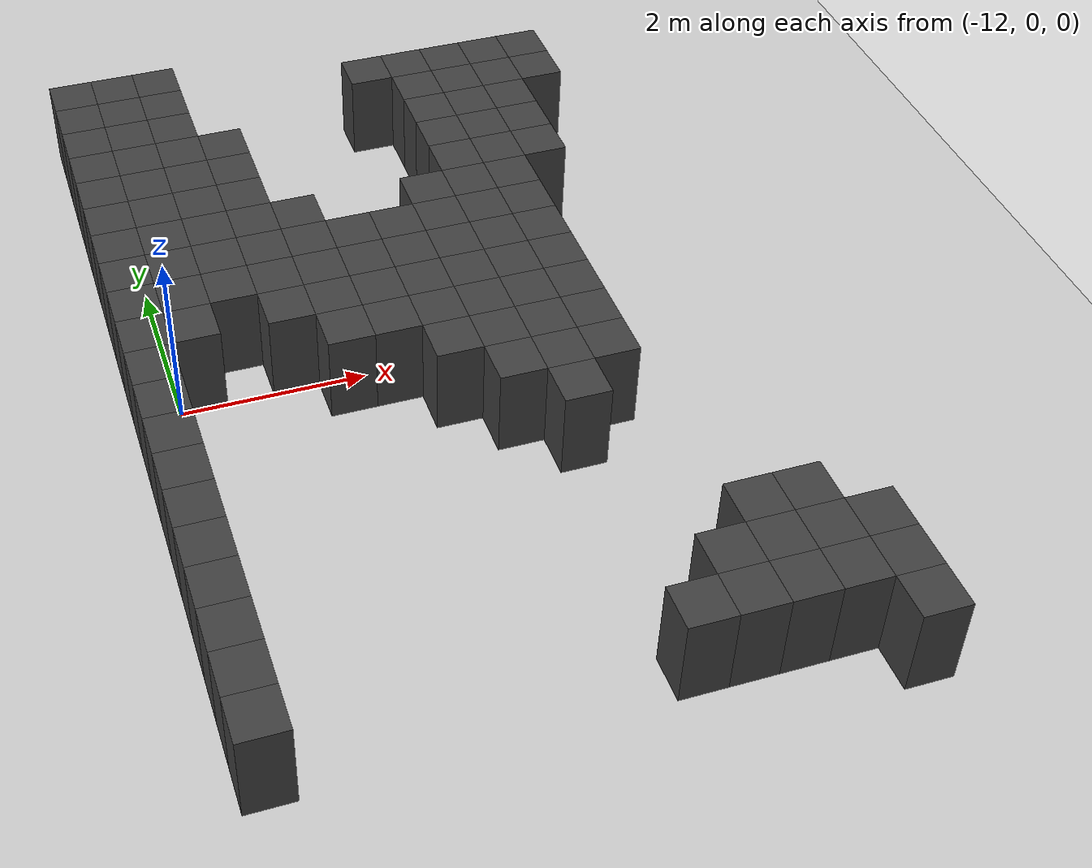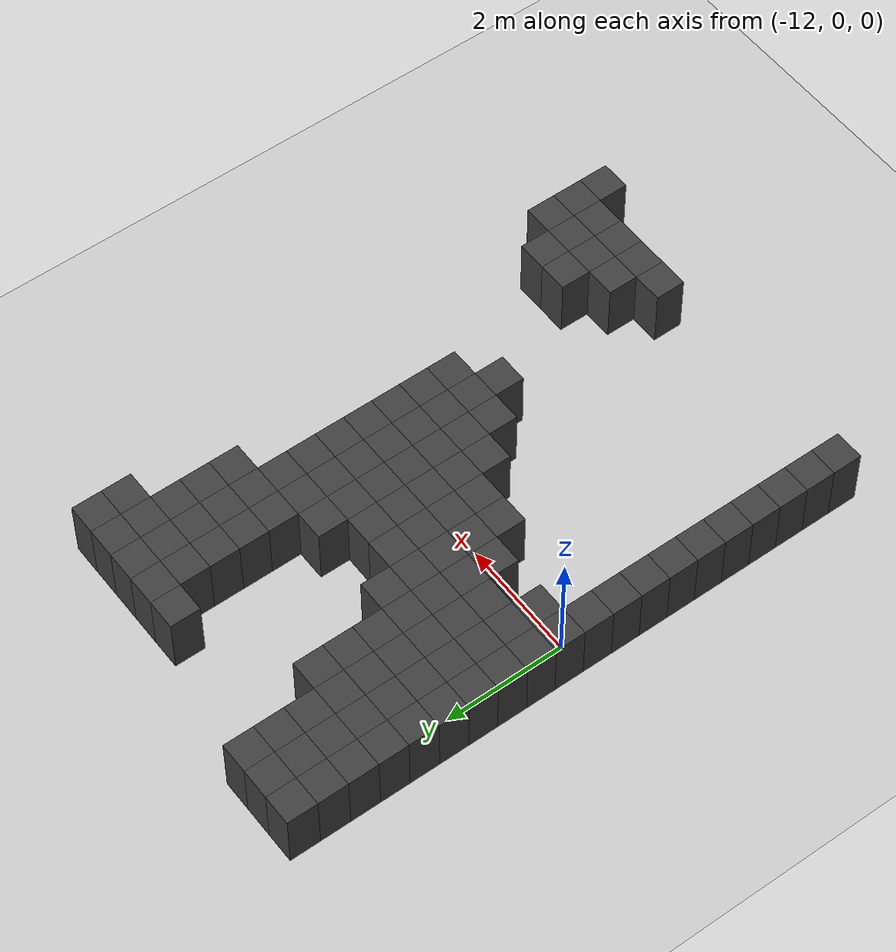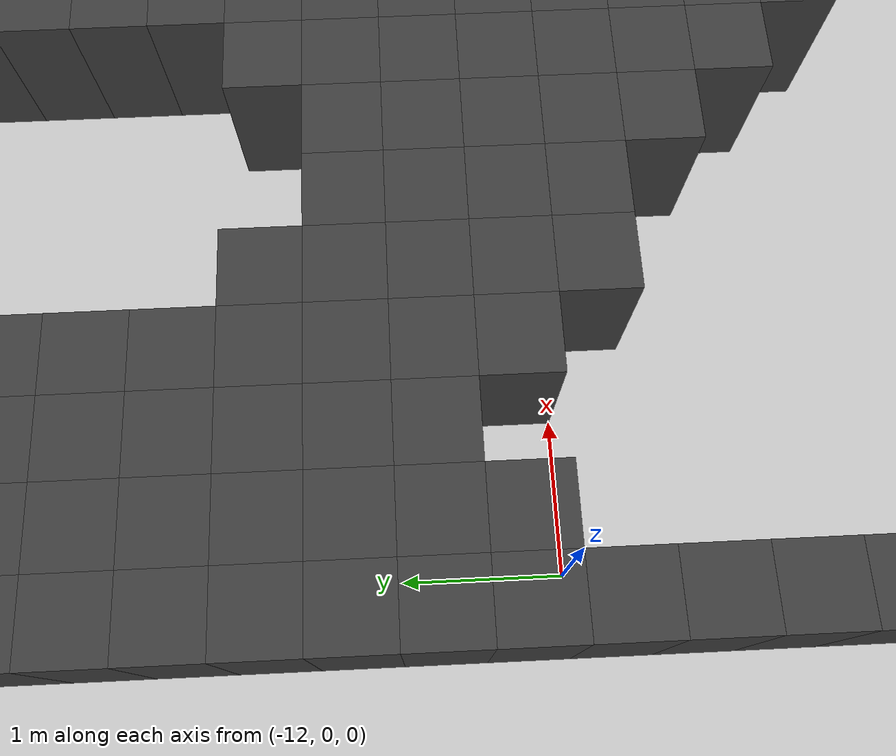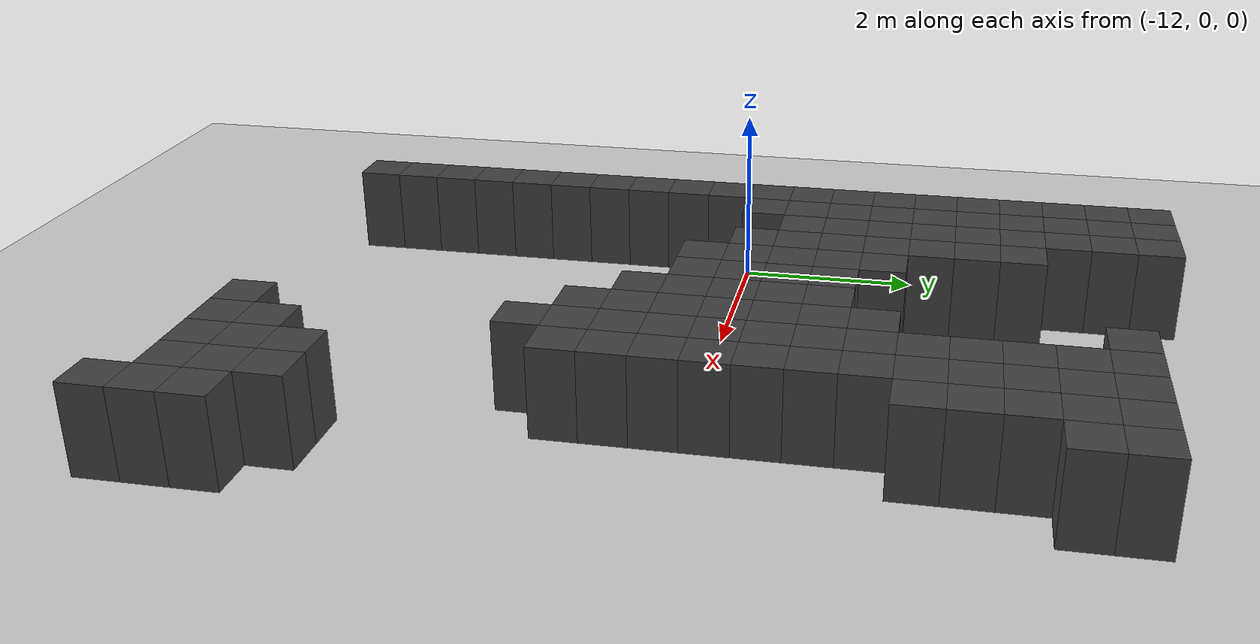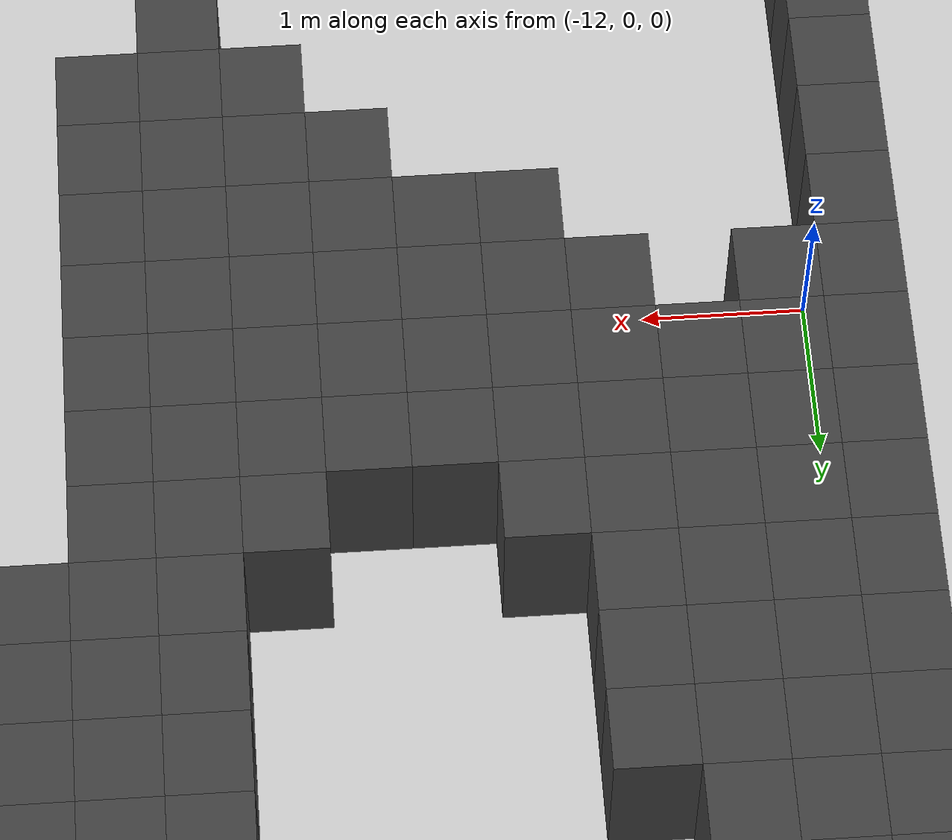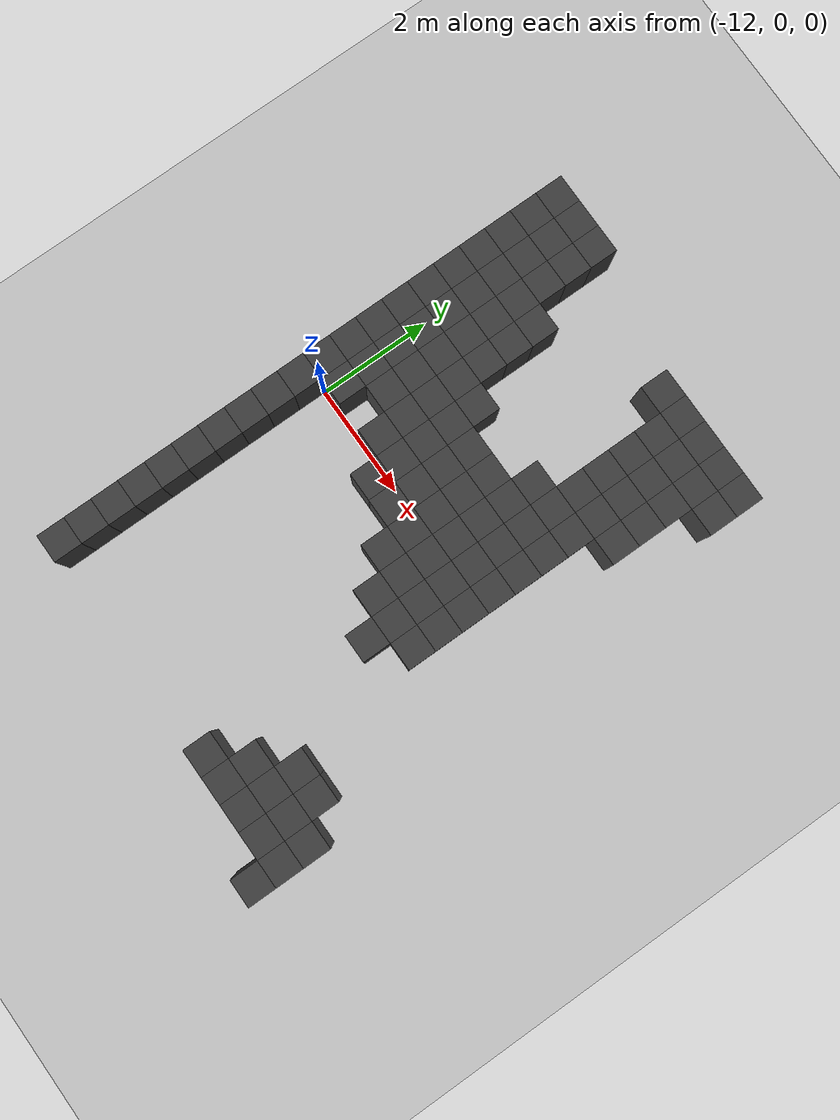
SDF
<sdf version="1.7">
 <world name="map_7219">
  <model name="ground_plane">
   <static>true</static>
   <link name="link">
    <collision name="collision">
     <geometry><plane><normal>0 0 1</normal><size>200 200</size></plane></geometry>
    </collision>
    <visual name="visual">
     <geometry><plane><normal>0 0 1</normal><size>200 200</size></plane></geometry>
     <material><ambient>0.8 0.8 0.8 1</ambient><diffuse>0.8 0.8 0.8 1</diffuse></material>
    </visual>
   </link>
  </model>
  <model name="maze_environment">
   <static>true</static>
   <link name="wall_198">
    <pose>-12.250 4.750 0.500 0 0 0</pose>
    <collision name="col"><geometry><box><size>0.5 0.5 1.0</size></box></geometry></collision>
    <visual name="vis">
     <geometry><box><size>0.5 0.5 1.0</size></box></geometry>
     <material><ambient>0.15 0.15 0.15 1</ambient><diffuse>0.25 0.25 0.25 1</diffuse></material>
    </visual>
   </link>
   <link name="wall_199">
    <pose>-11.750 4.750 0.500 0 0 0</pose>
    <collision name="col"><geometry><box><size>0.5 0.5 1.0</size></box></geometry></collision>
    <visual name="vis">
     <geometry><box><size>0.5 0.5 1.0</size></box></geometry>
     <material><ambient>0.15 0.15 0.15 1</ambient><diffuse>0.25 0.25 0.25 1</diffuse></material>
    </visual>
   </link>
   <link name="wall_200">
    <pose>-11.250 4.750 0.500 0 0 0</pose>
    <collision name="col"><geometry><box><size>0.5 0.5 1.0</size></box></geometry></collision>
    <visual name="vis">
     <geometry><box><size>0.5 0.5 1.0</size></box></geometry>
     <material><ambient>0.15 0.15 0.15 1</ambient><diffuse>0.25 0.25 0.25 1</diffuse></material>
    </visual>
   </link>
   <link name="wall_216">
    <pose>-12.250 4.250 0.500 0 0 0</pose>
    <collision name="col"><geometry><box><size>0.5 0.5 1.0</size></box></geometry></collision>
    <visual name="vis">
     <geometry><box><size>0.5 0.5 1.0</size></box></geometry>
     <material><ambient>0.15 0.15 0.15 1</ambient><diffuse>0.25 0.25 0.25 1</diffuse></material>
    </visual>
   </link>
   <link name="wall_217">
    <pose>-11.750 4.250 0.500 0 0 0</pose>
    <collision name="col"><geometry><box><size>0.5 0.5 1.0</size></box></geometry></collision>
    <visual name="vis">
     <geometry><box><size>0.5 0.5 1.0</size></box></geometry>
     <material><ambient>0.15 0.15 0.15 1</ambient><diffuse>0.25 0.25 0.25 1</diffuse></material>
    </visual>
   </link>
   <link name="wall_218">
    <pose>-11.250 4.250 0.500 0 0 0</pose>
    <collision name="col"><geometry><box><size>0.5 0.5 1.0</size></box></geometry></collision>
    <visual name="vis">
     <geometry><box><size>0.5 0.5 1.0</size></box></geometry>
     <material><ambient>0.15 0.15 0.15 1</ambient><diffuse>0.25 0.25 0.25 1</diffuse></material>
    </visual>
   </link>
   <link name="wall_219">
    <pose>-8.750 4.250 0.500 0 0 0</pose>
    <collision name="col"><geometry><box><size>0.5 0.5 1.0</size></box></geometry></collision>
    <visual name="vis">
     <geometry><box><size>0.5 0.5 1.0</size></box></geometry>
     <material><ambient>0.15 0.15 0.15 1</ambient><diffuse>0.25 0.25 0.25 1</diffuse></material>
    </visual>
   </link>
   <link name="wall_220">
    <pose>-8.250 4.250 0.500 0 0 0</pose>
    <collision name="col"><geometry><box><size>0.5 0.5 1.0</size></box></geometry></collision>
    <visual name="vis">
     <geometry><box><size>0.5 0.5 1.0</size></box></geometry>
     <material><ambient>0.15 0.15 0.15 1</ambient><diffuse>0.25 0.25 0.25 1</diffuse></material>
    </visual>
   </link>
   <link name="wall_221">
    <pose>-7.750 4.250 0.500 0 0 0</pose>
    <collision name="col"><geometry><box><size>0.5 0.5 1.0</size></box></geometry></collision>
    <visual name="vis">
     <geometry><box><size>0.5 0.5 1.0</size></box></geometry>
     <material><ambient>0.15 0.15 0.15 1</ambient><diffuse>0.25 0.25 0.25 1</diffuse></material>
    </visual>
   </link>
   <link name="wall_222">
    <pose>-7.250 4.250 0.500 0 0 0</pose>
    <collision name="col"><geometry><box><size>0.5 0.5 1.0</size></box></geometry></collision>
    <visual name="vis">
     <geometry><box><size>0.5 0.5 1.0</size></box></geometry>
     <material><ambient>0.15 0.15 0.15 1</ambient><diffuse>0.25 0.25 0.25 1</diffuse></material>
    </visual>
   </link>
   <link name="wall_223">
    <pose>-6.750 4.250 0.500 0 0 0</pose>
    <collision name="col"><geometry><box><size>0.5 0.5 1.0</size></box></geometry></collision>
    <visual name="vis">
     <geometry><box><size>0.5 0.5 1.0</size></box></geometry>
     <material><ambient>0.15 0.15 0.15 1</ambient><diffuse>0.25 0.25 0.25 1</diffuse></material>
    </visual>
   </link>
   <link name="wall_235">
    <pose>-12.250 3.750 0.500 0 0 0</pose>
    <collision name="col"><geometry><box><size>0.5 0.5 1.0</size></box></geometry></collision>
    <visual name="vis">
     <geometry><box><size>0.5 0.5 1.0</size></box></geometry>
     <material><ambient>0.15 0.15 0.15 1</ambient><diffuse>0.25 0.25 0.25 1</diffuse></material>
    </visual>
   </link>
   <link name="wall_236">
    <pose>-11.750 3.750 0.500 0 0 0</pose>
    <collision name="col"><geometry><box><size>0.5 0.5 1.0</size></box></geometry></collision>
    <visual name="vis">
     <geometry><box><size>0.5 0.5 1.0</size></box></geometry>
     <material><ambient>0.15 0.15 0.15 1</ambient><diffuse>0.25 0.25 0.25 1</diffuse></material>
    </visual>
   </link>
   <link name="wall_237">
    <pose>-11.250 3.750 0.500 0 0 0</pose>
    <collision name="col"><geometry><box><size>0.5 0.5 1.0</size></box></geometry></collision>
    <visual name="vis">
     <geometry><box><size>0.5 0.5 1.0</size></box></geometry>
     <material><ambient>0.15 0.15 0.15 1</ambient><diffuse>0.25 0.25 0.25 1</diffuse></material>
    </visual>
   </link>
   <link name="wall_238">
    <pose>-8.250 3.750 0.500 0 0 0</pose>
    <collision name="col"><geometry><box><size>0.5 0.5 1.0</size></box></geometry></collision>
    <visual name="vis">
     <geometry><box><size>0.5 0.5 1.0</size></box></geometry>
     <material><ambient>0.15 0.15 0.15 1</ambient><diffuse>0.25 0.25 0.25 1</diffuse></material>
    </visual>
   </link>
   <link name="wall_239">
    <pose>-7.750 3.750 0.500 0 0 0</pose>
    <collision name="col"><geometry><box><size>0.5 0.5 1.0</size></box></geometry></collision>
    <visual name="vis">
     <geometry><box><size>0.5 0.5 1.0</size></box></geometry>
     <material><ambient>0.15 0.15 0.15 1</ambient><diffuse>0.25 0.25 0.25 1</diffuse></material>
    </visual>
   </link>
   <link name="wall_240">
    <pose>-7.250 3.750 0.500 0 0 0</pose>
    <collision name="col"><geometry><box><size>0.5 0.5 1.0</size></box></geometry></collision>
    <visual name="vis">
     <geometry><box><size>0.5 0.5 1.0</size></box></geometry>
     <material><ambient>0.15 0.15 0.15 1</ambient><diffuse>0.25 0.25 0.25 1</diffuse></material>
    </visual>
   </link>
   <link name="wall_241">
    <pose>-6.750 3.750 0.500 0 0 0</pose>
    <collision name="col"><geometry><box><size>0.5 0.5 1.0</size></box></geometry></collision>
    <visual name="vis">
     <geometry><box><size>0.5 0.5 1.0</size></box></geometry>
     <material><ambient>0.15 0.15 0.15 1</ambient><diffuse>0.25 0.25 0.25 1</diffuse></material>
    </visual>
   </link>
   <link name="wall_253">
    <pose>-12.250 3.250 0.500 0 0 0</pose>
    <collision name="col"><geometry><box><size>0.5 0.5 1.0</size></box></geometry></collision>
    <visual name="vis">
     <geometry><box><size>0.5 0.5 1.0</size></box></geometry>
     <material><ambient>0.15 0.15 0.15 1</ambient><diffuse>0.25 0.25 0.25 1</diffuse></material>
    </visual>
   </link>
   <link name="wall_254">
    <pose>-11.750 3.250 0.500 0 0 0</pose>
    <collision name="col"><geometry><box><size>0.5 0.5 1.0</size></box></geometry></collision>
    <visual name="vis">
     <geometry><box><size>0.5 0.5 1.0</size></box></geometry>
     <material><ambient>0.15 0.15 0.15 1</ambient><diffuse>0.25 0.25 0.25 1</diffuse></material>
    </visual>
   </link>
   <link name="wall_255">
    <pose>-11.250 3.250 0.500 0 0 0</pose>
    <collision name="col"><geometry><box><size>0.5 0.5 1.0</size></box></geometry></collision>
    <visual name="vis">
     <geometry><box><size>0.5 0.5 1.0</size></box></geometry>
     <material><ambient>0.15 0.15 0.15 1</ambient><diffuse>0.25 0.25 0.25 1</diffuse></material>
    </visual>
   </link>
   <link name="wall_256">
    <pose>-10.750 3.250 0.500 0 0 0</pose>
    <collision name="col"><geometry><box><size>0.5 0.5 1.0</size></box></geometry></collision>
    <visual name="vis">
     <geometry><box><size>0.5 0.5 1.0</size></box></geometry>
     <material><ambient>0.15 0.15 0.15 1</ambient><diffuse>0.25 0.25 0.25 1</diffuse></material>
    </visual>
   </link>
   <link name="wall_257">
    <pose>-8.250 3.250 0.500 0 0 0</pose>
    <collision name="col"><geometry><box><size>0.5 0.5 1.0</size></box></geometry></collision>
    <visual name="vis">
     <geometry><box><size>0.5 0.5 1.0</size></box></geometry>
     <material><ambient>0.15 0.15 0.15 1</ambient><diffuse>0.25 0.25 0.25 1</diffuse></material>
    </visual>
   </link>
   <link name="wall_258">
    <pose>-7.750 3.250 0.500 0 0 0</pose>
    <collision name="col"><geometry><box><size>0.5 0.5 1.0</size></box></geometry></collision>
    <visual name="vis">
     <geometry><box><size>0.5 0.5 1.0</size></box></geometry>
     <material><ambient>0.15 0.15 0.15 1</ambient><diffuse>0.25 0.25 0.25 1</diffuse></material>
    </visual>
   </link>
   <link name="wall_259">
    <pose>-7.250 3.250 0.500 0 0 0</pose>
    <collision name="col"><geometry><box><size>0.5 0.5 1.0</size></box></geometry></collision>
    <visual name="vis">
     <geometry><box><size>0.5 0.5 1.0</size></box></geometry>
     <material><ambient>0.15 0.15 0.15 1</ambient><diffuse>0.25 0.25 0.25 1</diffuse></material>
    </visual>
   </link>
   <link name="wall_269">
    <pose>-12.250 2.750 0.500 0 0 0</pose>
    <collision name="col"><geometry><box><size>0.5 0.5 1.0</size></box></geometry></collision>
    <visual name="vis">
     <geometry><box><size>0.5 0.5 1.0</size></box></geometry>
     <material><ambient>0.15 0.15 0.15 1</ambient><diffuse>0.25 0.25 0.25 1</diffuse></material>
    </visual>
   </link>
   <link name="wall_270">
    <pose>-11.750 2.750 0.500 0 0 0</pose>
    <collision name="col"><geometry><box><size>0.5 0.5 1.0</size></box></geometry></collision>
    <visual name="vis">
     <geometry><box><size>0.5 0.5 1.0</size></box></geometry>
     <material><ambient>0.15 0.15 0.15 1</ambient><diffuse>0.25 0.25 0.25 1</diffuse></material>
    </visual>
   </link>
   <link name="wall_271">
    <pose>-11.250 2.750 0.500 0 0 0</pose>
    <collision name="col"><geometry><box><size>0.5 0.5 1.0</size></box></geometry></collision>
    <visual name="vis">
     <geometry><box><size>0.5 0.5 1.0</size></box></geometry>
     <material><ambient>0.15 0.15 0.15 1</ambient><diffuse>0.25 0.25 0.25 1</diffuse></material>
    </visual>
   </link>
   <link name="wall_272">
    <pose>-10.750 2.750 0.500 0 0 0</pose>
    <collision name="col"><geometry><box><size>0.5 0.5 1.0</size></box></geometry></collision>
    <visual name="vis">
     <geometry><box><size>0.5 0.5 1.0</size></box></geometry>
     <material><ambient>0.15 0.15 0.15 1</ambient><diffuse>0.25 0.25 0.25 1</diffuse></material>
    </visual>
   </link>
   <link name="wall_273">
    <pose>-8.250 2.750 0.500 0 0 0</pose>
    <collision name="col"><geometry><box><size>0.5 0.5 1.0</size></box></geometry></collision>
    <visual name="vis">
     <geometry><box><size>0.5 0.5 1.0</size></box></geometry>
     <material><ambient>0.15 0.15 0.15 1</ambient><diffuse>0.25 0.25 0.25 1</diffuse></material>
    </visual>
   </link>
   <link name="wall_274">
    <pose>-7.750 2.750 0.500 0 0 0</pose>
    <collision name="col"><geometry><box><size>0.5 0.5 1.0</size></box></geometry></collision>
    <visual name="vis">
     <geometry><box><size>0.5 0.5 1.0</size></box></geometry>
     <material><ambient>0.15 0.15 0.15 1</ambient><diffuse>0.25 0.25 0.25 1</diffuse></material>
    </visual>
   </link>
   <link name="wall_275">
    <pose>-7.250 2.750 0.500 0 0 0</pose>
    <collision name="col"><geometry><box><size>0.5 0.5 1.0</size></box></geometry></collision>
    <visual name="vis">
     <geometry><box><size>0.5 0.5 1.0</size></box></geometry>
     <material><ambient>0.15 0.15 0.15 1</ambient><diffuse>0.25 0.25 0.25 1</diffuse></material>
    </visual>
   </link>
   <link name="wall_284">
    <pose>-12.250 2.250 0.500 0 0 0</pose>
    <collision name="col"><geometry><box><size>0.5 0.5 1.0</size></box></geometry></collision>
    <visual name="vis">
     <geometry><box><size>0.5 0.5 1.0</size></box></geometry>
     <material><ambient>0.15 0.15 0.15 1</ambient><diffuse>0.25 0.25 0.25 1</diffuse></material>
    </visual>
   </link>
   <link name="wall_285">
    <pose>-11.750 2.250 0.500 0 0 0</pose>
    <collision name="col"><geometry><box><size>0.5 0.5 1.0</size></box></geometry></collision>
    <visual name="vis">
     <geometry><box><size>0.5 0.5 1.0</size></box></geometry>
     <material><ambient>0.15 0.15 0.15 1</ambient><diffuse>0.25 0.25 0.25 1</diffuse></material>
    </visual>
   </link>
   <link name="wall_286">
    <pose>-11.250 2.250 0.500 0 0 0</pose>
    <collision name="col"><geometry><box><size>0.5 0.5 1.0</size></box></geometry></collision>
    <visual name="vis">
     <geometry><box><size>0.5 0.5 1.0</size></box></geometry>
     <material><ambient>0.15 0.15 0.15 1</ambient><diffuse>0.25 0.25 0.25 1</diffuse></material>
    </visual>
   </link>
   <link name="wall_287">
    <pose>-10.750 2.250 0.500 0 0 0</pose>
    <collision name="col"><geometry><box><size>0.5 0.5 1.0</size></box></geometry></collision>
    <visual name="vis">
     <geometry><box><size>0.5 0.5 1.0</size></box></geometry>
     <material><ambient>0.15 0.15 0.15 1</ambient><diffuse>0.25 0.25 0.25 1</diffuse></material>
    </visual>
   </link>
   <link name="wall_288">
    <pose>-8.250 2.250 0.500 0 0 0</pose>
    <collision name="col"><geometry><box><size>0.5 0.5 1.0</size></box></geometry></collision>
    <visual name="vis">
     <geometry><box><size>0.5 0.5 1.0</size></box></geometry>
     <material><ambient>0.15 0.15 0.15 1</ambient><diffuse>0.25 0.25 0.25 1</diffuse></material>
    </visual>
   </link>
   <link name="wall_289">
    <pose>-7.750 2.250 0.500 0 0 0</pose>
    <collision name="col"><geometry><box><size>0.5 0.5 1.0</size></box></geometry></collision>
    <visual name="vis">
     <geometry><box><size>0.5 0.5 1.0</size></box></geometry>
     <material><ambient>0.15 0.15 0.15 1</ambient><diffuse>0.25 0.25 0.25 1</diffuse></material>
    </visual>
   </link>
   <link name="wall_290">
    <pose>-7.250 2.250 0.500 0 0 0</pose>
    <collision name="col"><geometry><box><size>0.5 0.5 1.0</size></box></geometry></collision>
    <visual name="vis">
     <geometry><box><size>0.5 0.5 1.0</size></box></geometry>
     <material><ambient>0.15 0.15 0.15 1</ambient><diffuse>0.25 0.25 0.25 1</diffuse></material>
    </visual>
   </link>
   <link name="wall_300">
    <pose>-12.250 1.750 0.500 0 0 0</pose>
    <collision name="col"><geometry><box><size>0.5 0.5 1.0</size></box></geometry></collision>
    <visual name="vis">
     <geometry><box><size>0.5 0.5 1.0</size></box></geometry>
     <material><ambient>0.15 0.15 0.15 1</ambient><diffuse>0.25 0.25 0.25 1</diffuse></material>
    </visual>
   </link>
   <link name="wall_301">
    <pose>-11.750 1.750 0.500 0 0 0</pose>
    <collision name="col"><geometry><box><size>0.5 0.5 1.0</size></box></geometry></collision>
    <visual name="vis">
     <geometry><box><size>0.5 0.5 1.0</size></box></geometry>
     <material><ambient>0.15 0.15 0.15 1</ambient><diffuse>0.25 0.25 0.25 1</diffuse></material>
    </visual>
   </link>
   <link name="wall_302">
    <pose>-11.250 1.750 0.500 0 0 0</pose>
    <collision name="col"><geometry><box><size>0.5 0.5 1.0</size></box></geometry></collision>
    <visual name="vis">
     <geometry><box><size>0.5 0.5 1.0</size></box></geometry>
     <material><ambient>0.15 0.15 0.15 1</ambient><diffuse>0.25 0.25 0.25 1</diffuse></material>
    </visual>
   </link>
   <link name="wall_303">
    <pose>-10.750 1.750 0.500 0 0 0</pose>
    <collision name="col"><geometry><box><size>0.5 0.5 1.0</size></box></geometry></collision>
    <visual name="vis">
     <geometry><box><size>0.5 0.5 1.0</size></box></geometry>
     <material><ambient>0.15 0.15 0.15 1</ambient><diffuse>0.25 0.25 0.25 1</diffuse></material>
    </visual>
   </link>
   <link name="wall_304">
    <pose>-10.250 1.750 0.500 0 0 0</pose>
    <collision name="col"><geometry><box><size>0.5 0.5 1.0</size></box></geometry></collision>
    <visual name="vis">
     <geometry><box><size>0.5 0.5 1.0</size></box></geometry>
     <material><ambient>0.15 0.15 0.15 1</ambient><diffuse>0.25 0.25 0.25 1</diffuse></material>
    </visual>
   </link>
   <link name="wall_305">
    <pose>-8.750 1.750 0.500 0 0 0</pose>
    <collision name="col"><geometry><box><size>0.5 0.5 1.0</size></box></geometry></collision>
    <visual name="vis">
     <geometry><box><size>0.5 0.5 1.0</size></box></geometry>
     <material><ambient>0.15 0.15 0.15 1</ambient><diffuse>0.25 0.25 0.25 1</diffuse></material>
    </visual>
   </link>
   <link name="wall_306">
    <pose>-8.250 1.750 0.500 0 0 0</pose>
    <collision name="col"><geometry><box><size>0.5 0.5 1.0</size></box></geometry></collision>
    <visual name="vis">
     <geometry><box><size>0.5 0.5 1.0</size></box></geometry>
     <material><ambient>0.15 0.15 0.15 1</ambient><diffuse>0.25 0.25 0.25 1</diffuse></material>
    </visual>
   </link>
   <link name="wall_307">
    <pose>-7.750 1.750 0.500 0 0 0</pose>
    <collision name="col"><geometry><box><size>0.5 0.5 1.0</size></box></geometry></collision>
    <visual name="vis">
     <geometry><box><size>0.5 0.5 1.0</size></box></geometry>
     <material><ambient>0.15 0.15 0.15 1</ambient><diffuse>0.25 0.25 0.25 1</diffuse></material>
    </visual>
   </link>
   <link name="wall_318">
    <pose>-12.250 1.250 0.500 0 0 0</pose>
    <collision name="col"><geometry><box><size>0.5 0.5 1.0</size></box></geometry></collision>
    <visual name="vis">
     <geometry><box><size>0.5 0.5 1.0</size></box></geometry>
     <material><ambient>0.15 0.15 0.15 1</ambient><diffuse>0.25 0.25 0.25 1</diffuse></material>
    </visual>
   </link>
   <link name="wall_319">
    <pose>-11.750 1.250 0.500 0 0 0</pose>
    <collision name="col"><geometry><box><size>0.5 0.5 1.0</size></box></geometry></collision>
    <visual name="vis">
     <geometry><box><size>0.5 0.5 1.0</size></box></geometry>
     <material><ambient>0.15 0.15 0.15 1</ambient><diffuse>0.25 0.25 0.25 1</diffuse></material>
    </visual>
   </link>
   <link name="wall_320">
    <pose>-11.250 1.250 0.500 0 0 0</pose>
    <collision name="col"><geometry><box><size>0.5 0.5 1.0</size></box></geometry></collision>
    <visual name="vis">
     <geometry><box><size>0.5 0.5 1.0</size></box></geometry>
     <material><ambient>0.15 0.15 0.15 1</ambient><diffuse>0.25 0.25 0.25 1</diffuse></material>
    </visual>
   </link>
   <link name="wall_321">
    <pose>-10.750 1.250 0.500 0 0 0</pose>
    <collision name="col"><geometry><box><size>0.5 0.5 1.0</size></box></geometry></collision>
    <visual name="vis">
     <geometry><box><size>0.5 0.5 1.0</size></box></geometry>
     <material><ambient>0.15 0.15 0.15 1</ambient><diffuse>0.25 0.25 0.25 1</diffuse></material>
    </visual>
   </link>
   <link name="wall_322">
    <pose>-10.250 1.250 0.500 0 0 0</pose>
    <collision name="col"><geometry><box><size>0.5 0.5 1.0</size></box></geometry></collision>
    <visual name="vis">
     <geometry><box><size>0.5 0.5 1.0</size></box></geometry>
     <material><ambient>0.15 0.15 0.15 1</ambient><diffuse>0.25 0.25 0.25 1</diffuse></material>
    </visual>
   </link>
   <link name="wall_323">
    <pose>-9.750 1.250 0.500 0 0 0</pose>
    <collision name="col"><geometry><box><size>0.5 0.5 1.0</size></box></geometry></collision>
    <visual name="vis">
     <geometry><box><size>0.5 0.5 1.0</size></box></geometry>
     <material><ambient>0.15 0.15 0.15 1</ambient><diffuse>0.25 0.25 0.25 1</diffuse></material>
    </visual>
   </link>
   <link name="wall_324">
    <pose>-9.250 1.250 0.500 0 0 0</pose>
    <collision name="col"><geometry><box><size>0.5 0.5 1.0</size></box></geometry></collision>
    <visual name="vis">
     <geometry><box><size>0.5 0.5 1.0</size></box></geometry>
     <material><ambient>0.15 0.15 0.15 1</ambient><diffuse>0.25 0.25 0.25 1</diffuse></material>
    </visual>
   </link>
   <link name="wall_325">
    <pose>-8.750 1.250 0.500 0 0 0</pose>
    <collision name="col"><geometry><box><size>0.5 0.5 1.0</size></box></geometry></collision>
    <visual name="vis">
     <geometry><box><size>0.5 0.5 1.0</size></box></geometry>
     <material><ambient>0.15 0.15 0.15 1</ambient><diffuse>0.25 0.25 0.25 1</diffuse></material>
    </visual>
   </link>
   <link name="wall_326">
    <pose>-8.250 1.250 0.500 0 0 0</pose>
    <collision name="col"><geometry><box><size>0.5 0.5 1.0</size></box></geometry></collision>
    <visual name="vis">
     <geometry><box><size>0.5 0.5 1.0</size></box></geometry>
     <material><ambient>0.15 0.15 0.15 1</ambient><diffuse>0.25 0.25 0.25 1</diffuse></material>
    </visual>
   </link>
   <link name="wall_327">
    <pose>-7.750 1.250 0.500 0 0 0</pose>
    <collision name="col"><geometry><box><size>0.5 0.5 1.0</size></box></geometry></collision>
    <visual name="vis">
     <geometry><box><size>0.5 0.5 1.0</size></box></geometry>
     <material><ambient>0.15 0.15 0.15 1</ambient><diffuse>0.25 0.25 0.25 1</diffuse></material>
    </visual>
   </link>
   <link name="wall_340">
    <pose>-12.250 0.750 0.500 0 0 0</pose>
    <collision name="col"><geometry><box><size>0.5 0.5 1.0</size></box></geometry></collision>
    <visual name="vis">
     <geometry><box><size>0.5 0.5 1.0</size></box></geometry>
     <material><ambient>0.15 0.15 0.15 1</ambient><diffuse>0.25 0.25 0.25 1</diffuse></material>
    </visual>
   </link>
   <link name="wall_341">
    <pose>-11.750 0.750 0.500 0 0 0</pose>
    <collision name="col"><geometry><box><size>0.5 0.5 1.0</size></box></geometry></collision>
    <visual name="vis">
     <geometry><box><size>0.5 0.5 1.0</size></box></geometry>
     <material><ambient>0.15 0.15 0.15 1</ambient><diffuse>0.25 0.25 0.25 1</diffuse></material>
    </visual>
   </link>
   <link name="wall_342">
    <pose>-11.250 0.750 0.500 0 0 0</pose>
    <collision name="col"><geometry><box><size>0.5 0.5 1.0</size></box></geometry></collision>
    <visual name="vis">
     <geometry><box><size>0.5 0.5 1.0</size></box></geometry>
     <material><ambient>0.15 0.15 0.15 1</ambient><diffuse>0.25 0.25 0.25 1</diffuse></material>
    </visual>
   </link>
   <link name="wall_343">
    <pose>-10.750 0.750 0.500 0 0 0</pose>
    <collision name="col"><geometry><box><size>0.5 0.5 1.0</size></box></geometry></collision>
    <visual name="vis">
     <geometry><box><size>0.5 0.5 1.0</size></box></geometry>
     <material><ambient>0.15 0.15 0.15 1</ambient><diffuse>0.25 0.25 0.25 1</diffuse></material>
    </visual>
   </link>
   <link name="wall_344">
    <pose>-10.250 0.750 0.500 0 0 0</pose>
    <collision name="col"><geometry><box><size>0.5 0.5 1.0</size></box></geometry></collision>
    <visual name="vis">
     <geometry><box><size>0.5 0.5 1.0</size></box></geometry>
     <material><ambient>0.15 0.15 0.15 1</ambient><diffuse>0.25 0.25 0.25 1</diffuse></material>
    </visual>
   </link>
   <link name="wall_345">
    <pose>-9.750 0.750 0.500 0 0 0</pose>
    <collision name="col"><geometry><box><size>0.5 0.5 1.0</size></box></geometry></collision>
    <visual name="vis">
     <geometry><box><size>0.5 0.5 1.0</size></box></geometry>
     <material><ambient>0.15 0.15 0.15 1</ambient><diffuse>0.25 0.25 0.25 1</diffuse></material>
    </visual>
   </link>
   <link name="wall_346">
    <pose>-9.250 0.750 0.500 0 0 0</pose>
    <collision name="col"><geometry><box><size>0.5 0.5 1.0</size></box></geometry></collision>
    <visual name="vis">
     <geometry><box><size>0.5 0.5 1.0</size></box></geometry>
     <material><ambient>0.15 0.15 0.15 1</ambient><diffuse>0.25 0.25 0.25 1</diffuse></material>
    </visual>
   </link>
   <link name="wall_347">
    <pose>-8.750 0.750 0.500 0 0 0</pose>
    <collision name="col"><geometry><box><size>0.5 0.5 1.0</size></box></geometry></collision>
    <visual name="vis">
     <geometry><box><size>0.5 0.5 1.0</size></box></geometry>
     <material><ambient>0.15 0.15 0.15 1</ambient><diffuse>0.25 0.25 0.25 1</diffuse></material>
    </visual>
   </link>
   <link name="wall_348">
    <pose>-8.250 0.750 0.500 0 0 0</pose>
    <collision name="col"><geometry><box><size>0.5 0.5 1.0</size></box></geometry></collision>
    <visual name="vis">
     <geometry><box><size>0.5 0.5 1.0</size></box></geometry>
     <material><ambient>0.15 0.15 0.15 1</ambient><diffuse>0.25 0.25 0.25 1</diffuse></material>
    </visual>
   </link>
   <link name="wall_349">
    <pose>-7.750 0.750 0.500 0 0 0</pose>
    <collision name="col"><geometry><box><size>0.5 0.5 1.0</size></box></geometry></collision>
    <visual name="vis">
     <geometry><box><size>0.5 0.5 1.0</size></box></geometry>
     <material><ambient>0.15 0.15 0.15 1</ambient><diffuse>0.25 0.25 0.25 1</diffuse></material>
    </visual>
   </link>
   <link name="wall_364">
    <pose>-12.250 0.250 0.500 0 0 0</pose>
    <collision name="col"><geometry><box><size>0.5 0.5 1.0</size></box></geometry></collision>
    <visual name="vis">
     <geometry><box><size>0.5 0.5 1.0</size></box></geometry>
     <material><ambient>0.15 0.15 0.15 1</ambient><diffuse>0.25 0.25 0.25 1</diffuse></material>
    </visual>
   </link>
   <link name="wall_365">
    <pose>-11.750 0.250 0.500 0 0 0</pose>
    <collision name="col"><geometry><box><size>0.5 0.5 1.0</size></box></geometry></collision>
    <visual name="vis">
     <geometry><box><size>0.5 0.5 1.0</size></box></geometry>
     <material><ambient>0.15 0.15 0.15 1</ambient><diffuse>0.25 0.25 0.25 1</diffuse></material>
    </visual>
   </link>
   <link name="wall_366">
    <pose>-10.750 0.250 0.500 0 0 0</pose>
    <collision name="col"><geometry><box><size>0.5 0.5 1.0</size></box></geometry></collision>
    <visual name="vis">
     <geometry><box><size>0.5 0.5 1.0</size></box></geometry>
     <material><ambient>0.15 0.15 0.15 1</ambient><diffuse>0.25 0.25 0.25 1</diffuse></material>
    </visual>
   </link>
   <link name="wall_367">
    <pose>-10.250 0.250 0.500 0 0 0</pose>
    <collision name="col"><geometry><box><size>0.5 0.5 1.0</size></box></geometry></collision>
    <visual name="vis">
     <geometry><box><size>0.5 0.5 1.0</size></box></geometry>
     <material><ambient>0.15 0.15 0.15 1</ambient><diffuse>0.25 0.25 0.25 1</diffuse></material>
    </visual>
   </link>
   <link name="wall_368">
    <pose>-9.750 0.250 0.500 0 0 0</pose>
    <collision name="col"><geometry><box><size>0.5 0.5 1.0</size></box></geometry></collision>
    <visual name="vis">
     <geometry><box><size>0.5 0.5 1.0</size></box></geometry>
     <material><ambient>0.15 0.15 0.15 1</ambient><diffuse>0.25 0.25 0.25 1</diffuse></material>
    </visual>
   </link>
   <link name="wall_369">
    <pose>-9.250 0.250 0.500 0 0 0</pose>
    <collision name="col"><geometry><box><size>0.5 0.5 1.0</size></box></geometry></collision>
    <visual name="vis">
     <geometry><box><size>0.5 0.5 1.0</size></box></geometry>
     <material><ambient>0.15 0.15 0.15 1</ambient><diffuse>0.25 0.25 0.25 1</diffuse></material>
    </visual>
   </link>
   <link name="wall_370">
    <pose>-8.750 0.250 0.500 0 0 0</pose>
    <collision name="col"><geometry><box><size>0.5 0.5 1.0</size></box></geometry></collision>
    <visual name="vis">
     <geometry><box><size>0.5 0.5 1.0</size></box></geometry>
     <material><ambient>0.15 0.15 0.15 1</ambient><diffuse>0.25 0.25 0.25 1</diffuse></material>
    </visual>
   </link>
   <link name="wall_371">
    <pose>-8.250 0.250 0.500 0 0 0</pose>
    <collision name="col"><geometry><box><size>0.5 0.5 1.0</size></box></geometry></collision>
    <visual name="vis">
     <geometry><box><size>0.5 0.5 1.0</size></box></geometry>
     <material><ambient>0.15 0.15 0.15 1</ambient><diffuse>0.25 0.25 0.25 1</diffuse></material>
    </visual>
   </link>
   <link name="wall_372">
    <pose>-7.750 0.250 0.500 0 0 0</pose>
    <collision name="col"><geometry><box><size>0.5 0.5 1.0</size></box></geometry></collision>
    <visual name="vis">
     <geometry><box><size>0.5 0.5 1.0</size></box></geometry>
     <material><ambient>0.15 0.15 0.15 1</ambient><diffuse>0.25 0.25 0.25 1</diffuse></material>
    </visual>
   </link>
   <link name="wall_386">
    <pose>-12.250 -0.250 0.500 0 0 0</pose>
    <collision name="col"><geometry><box><size>0.5 0.5 1.0</size></box></geometry></collision>
    <visual name="vis">
     <geometry><box><size>0.5 0.5 1.0</size></box></geometry>
     <material><ambient>0.15 0.15 0.15 1</ambient><diffuse>0.25 0.25 0.25 1</diffuse></material>
    </visual>
   </link>
   <link name="wall_387">
    <pose>-10.250 -0.250 0.500 0 0 0</pose>
    <collision name="col"><geometry><box><size>0.5 0.5 1.0</size></box></geometry></collision>
    <visual name="vis">
     <geometry><box><size>0.5 0.5 1.0</size></box></geometry>
     <material><ambient>0.15 0.15 0.15 1</ambient><diffuse>0.25 0.25 0.25 1</diffuse></material>
    </visual>
   </link>
   <link name="wall_388">
    <pose>-9.750 -0.250 0.500 0 0 0</pose>
    <collision name="col"><geometry><box><size>0.5 0.5 1.0</size></box></geometry></collision>
    <visual name="vis">
     <geometry><box><size>0.5 0.5 1.0</size></box></geometry>
     <material><ambient>0.15 0.15 0.15 1</ambient><diffuse>0.25 0.25 0.25 1</diffuse></material>
    </visual>
   </link>
   <link name="wall_389">
    <pose>-9.250 -0.250 0.500 0 0 0</pose>
    <collision name="col"><geometry><box><size>0.5 0.5 1.0</size></box></geometry></collision>
    <visual name="vis">
     <geometry><box><size>0.5 0.5 1.0</size></box></geometry>
     <material><ambient>0.15 0.15 0.15 1</ambient><diffuse>0.25 0.25 0.25 1</diffuse></material>
    </visual>
   </link>
   <link name="wall_390">
    <pose>-8.750 -0.250 0.500 0 0 0</pose>
    <collision name="col"><geometry><box><size>0.5 0.5 1.0</size></box></geometry></collision>
    <visual name="vis">
     <geometry><box><size>0.5 0.5 1.0</size></box></geometry>
     <material><ambient>0.15 0.15 0.15 1</ambient><diffuse>0.25 0.25 0.25 1</diffuse></material>
    </visual>
   </link>
   <link name="wall_391">
    <pose>-8.250 -0.250 0.500 0 0 0</pose>
    <collision name="col"><geometry><box><size>0.5 0.5 1.0</size></box></geometry></collision>
    <visual name="vis">
     <geometry><box><size>0.5 0.5 1.0</size></box></geometry>
     <material><ambient>0.15 0.15 0.15 1</ambient><diffuse>0.25 0.25 0.25 1</diffuse></material>
    </visual>
   </link>
   <link name="wall_392">
    <pose>-7.750 -0.250 0.500 0 0 0</pose>
    <collision name="col"><geometry><box><size>0.5 0.5 1.0</size></box></geometry></collision>
    <visual name="vis">
     <geometry><box><size>0.5 0.5 1.0</size></box></geometry>
     <material><ambient>0.15 0.15 0.15 1</ambient><diffuse>0.25 0.25 0.25 1</diffuse></material>
    </visual>
   </link>
   <link name="wall_399">
    <pose>-12.250 -0.750 0.500 0 0 0</pose>
    <collision name="col"><geometry><box><size>0.5 0.5 1.0</size></box></geometry></collision>
    <visual name="vis">
     <geometry><box><size>0.5 0.5 1.0</size></box></geometry>
     <material><ambient>0.15 0.15 0.15 1</ambient><diffuse>0.25 0.25 0.25 1</diffuse></material>
    </visual>
   </link>
   <link name="wall_400">
    <pose>-9.250 -0.750 0.500 0 0 0</pose>
    <collision name="col"><geometry><box><size>0.5 0.5 1.0</size></box></geometry></collision>
    <visual name="vis">
     <geometry><box><size>0.5 0.5 1.0</size></box></geometry>
     <material><ambient>0.15 0.15 0.15 1</ambient><diffuse>0.25 0.25 0.25 1</diffuse></material>
    </visual>
   </link>
   <link name="wall_401">
    <pose>-8.750 -0.750 0.500 0 0 0</pose>
    <collision name="col"><geometry><box><size>0.5 0.5 1.0</size></box></geometry></collision>
    <visual name="vis">
     <geometry><box><size>0.5 0.5 1.0</size></box></geometry>
     <material><ambient>0.15 0.15 0.15 1</ambient><diffuse>0.25 0.25 0.25 1</diffuse></material>
    </visual>
   </link>
   <link name="wall_402">
    <pose>-8.250 -0.750 0.500 0 0 0</pose>
    <collision name="col"><geometry><box><size>0.5 0.5 1.0</size></box></geometry></collision>
    <visual name="vis">
     <geometry><box><size>0.5 0.5 1.0</size></box></geometry>
     <material><ambient>0.15 0.15 0.15 1</ambient><diffuse>0.25 0.25 0.25 1</diffuse></material>
    </visual>
   </link>
   <link name="wall_403">
    <pose>-7.750 -0.750 0.500 0 0 0</pose>
    <collision name="col"><geometry><box><size>0.5 0.5 1.0</size></box></geometry></collision>
    <visual name="vis">
     <geometry><box><size>0.5 0.5 1.0</size></box></geometry>
     <material><ambient>0.15 0.15 0.15 1</ambient><diffuse>0.25 0.25 0.25 1</diffuse></material>
    </visual>
   </link>
   <link name="wall_406">
    <pose>-12.250 -1.250 0.500 0 0 0</pose>
    <collision name="col"><geometry><box><size>0.5 0.5 1.0</size></box></geometry></collision>
    <visual name="vis">
     <geometry><box><size>0.5 0.5 1.0</size></box></geometry>
     <material><ambient>0.15 0.15 0.15 1</ambient><diffuse>0.25 0.25 0.25 1</diffuse></material>
    </visual>
   </link>
   <link name="wall_407">
    <pose>-8.750 -1.250 0.500 0 0 0</pose>
    <collision name="col"><geometry><box><size>0.5 0.5 1.0</size></box></geometry></collision>
    <visual name="vis">
     <geometry><box><size>0.5 0.5 1.0</size></box></geometry>
     <material><ambient>0.15 0.15 0.15 1</ambient><diffuse>0.25 0.25 0.25 1</diffuse></material>
    </visual>
   </link>
   <link name="wall_408">
    <pose>-8.250 -1.250 0.500 0 0 0</pose>
    <collision name="col"><geometry><box><size>0.5 0.5 1.0</size></box></geometry></collision>
    <visual name="vis">
     <geometry><box><size>0.5 0.5 1.0</size></box></geometry>
     <material><ambient>0.15 0.15 0.15 1</ambient><diffuse>0.25 0.25 0.25 1</diffuse></material>
    </visual>
   </link>
   <link name="wall_409">
    <pose>-7.750 -1.250 0.500 0 0 0</pose>
    <collision name="col"><geometry><box><size>0.5 0.5 1.0</size></box></geometry></collision>
    <visual name="vis">
     <geometry><box><size>0.5 0.5 1.0</size></box></geometry>
     <material><ambient>0.15 0.15 0.15 1</ambient><diffuse>0.25 0.25 0.25 1</diffuse></material>
    </visual>
   </link>
   <link name="wall_411">
    <pose>-12.250 -1.750 0.500 0 0 0</pose>
    <collision name="col"><geometry><box><size>0.5 0.5 1.0</size></box></geometry></collision>
    <visual name="vis">
     <geometry><box><size>0.5 0.5 1.0</size></box></geometry>
     <material><ambient>0.15 0.15 0.15 1</ambient><diffuse>0.25 0.25 0.25 1</diffuse></material>
    </visual>
   </link>
   <link name="wall_412">
    <pose>-8.250 -1.750 0.500 0 0 0</pose>
    <collision name="col"><geometry><box><size>0.5 0.5 1.0</size></box></geometry></collision>
    <visual name="vis">
     <geometry><box><size>0.5 0.5 1.0</size></box></geometry>
     <material><ambient>0.15 0.15 0.15 1</ambient><diffuse>0.25 0.25 0.25 1</diffuse></material>
    </visual>
   </link>
   <link name="wall_420">
    <pose>-12.250 -2.250 0.500 0 0 0</pose>
    <collision name="col"><geometry><box><size>0.5 0.5 1.0</size></box></geometry></collision>
    <visual name="vis">
     <geometry><box><size>0.5 0.5 1.0</size></box></geometry>
     <material><ambient>0.15 0.15 0.15 1</ambient><diffuse>0.25 0.25 0.25 1</diffuse></material>
    </visual>
   </link>
   <link name="wall_429">
    <pose>-12.250 -2.750 0.500 0 0 0</pose>
    <collision name="col"><geometry><box><size>0.5 0.5 1.0</size></box></geometry></collision>
    <visual name="vis">
     <geometry><box><size>0.5 0.5 1.0</size></box></geometry>
     <material><ambient>0.15 0.15 0.15 1</ambient><diffuse>0.25 0.25 0.25 1</diffuse></material>
    </visual>
   </link>
   <link name="wall_439">
    <pose>-12.250 -3.250 0.500 0 0 0</pose>
    <collision name="col"><geometry><box><size>0.5 0.5 1.0</size></box></geometry></collision>
    <visual name="vis">
     <geometry><box><size>0.5 0.5 1.0</size></box></geometry>
     <material><ambient>0.15 0.15 0.15 1</ambient><diffuse>0.25 0.25 0.25 1</diffuse></material>
    </visual>
   </link>
   <link name="wall_449">
    <pose>-12.250 -3.750 0.500 0 0 0</pose>
    <collision name="col"><geometry><box><size>0.5 0.5 1.0</size></box></geometry></collision>
    <visual name="vis">
     <geometry><box><size>0.5 0.5 1.0</size></box></geometry>
     <material><ambient>0.15 0.15 0.15 1</ambient><diffuse>0.25 0.25 0.25 1</diffuse></material>
    </visual>
   </link>
   <link name="wall_450">
    <pose>-7.250 -3.750 0.500 0 0 0</pose>
    <collision name="col"><geometry><box><size>0.5 0.5 1.0</size></box></geometry></collision>
    <visual name="vis">
     <geometry><box><size>0.5 0.5 1.0</size></box></geometry>
     <material><ambient>0.15 0.15 0.15 1</ambient><diffuse>0.25 0.25 0.25 1</diffuse></material>
    </visual>
   </link>
   <link name="wall_451">
    <pose>-6.750 -3.750 0.500 0 0 0</pose>
    <collision name="col"><geometry><box><size>0.5 0.5 1.0</size></box></geometry></collision>
    <visual name="vis">
     <geometry><box><size>0.5 0.5 1.0</size></box></geometry>
     <material><ambient>0.15 0.15 0.15 1</ambient><diffuse>0.25 0.25 0.25 1</diffuse></material>
    </visual>
   </link>
   <link name="wall_457">
    <pose>-12.250 -4.250 0.500 0 0 0</pose>
    <collision name="col"><geometry><box><size>0.5 0.5 1.0</size></box></geometry></collision>
    <visual name="vis">
     <geometry><box><size>0.5 0.5 1.0</size></box></geometry>
     <material><ambient>0.15 0.15 0.15 1</ambient><diffuse>0.25 0.25 0.25 1</diffuse></material>
    </visual>
   </link>
   <link name="wall_458">
    <pose>-7.750 -4.250 0.500 0 0 0</pose>
    <collision name="col"><geometry><box><size>0.5 0.5 1.0</size></box></geometry></collision>
    <visual name="vis">
     <geometry><box><size>0.5 0.5 1.0</size></box></geometry>
     <material><ambient>0.15 0.15 0.15 1</ambient><diffuse>0.25 0.25 0.25 1</diffuse></material>
    </visual>
   </link>
   <link name="wall_459">
    <pose>-7.250 -4.250 0.500 0 0 0</pose>
    <collision name="col"><geometry><box><size>0.5 0.5 1.0</size></box></geometry></collision>
    <visual name="vis">
     <geometry><box><size>0.5 0.5 1.0</size></box></geometry>
     <material><ambient>0.15 0.15 0.15 1</ambient><diffuse>0.25 0.25 0.25 1</diffuse></material>
    </visual>
   </link>
   <link name="wall_460">
    <pose>-6.750 -4.250 0.500 0 0 0</pose>
    <collision name="col"><geometry><box><size>0.5 0.5 1.0</size></box></geometry></collision>
    <visual name="vis">
     <geometry><box><size>0.5 0.5 1.0</size></box></geometry>
     <material><ambient>0.15 0.15 0.15 1</ambient><diffuse>0.25 0.25 0.25 1</diffuse></material>
    </visual>
   </link>
   <link name="wall_461">
    <pose>-6.250 -4.250 0.500 0 0 0</pose>
    <collision name="col"><geometry><box><size>0.5 0.5 1.0</size></box></geometry></collision>
    <visual name="vis">
     <geometry><box><size>0.5 0.5 1.0</size></box></geometry>
     <material><ambient>0.15 0.15 0.15 1</ambient><diffuse>0.25 0.25 0.25 1</diffuse></material>
    </visual>
   </link>
   <link name="wall_467">
    <pose>-12.250 -4.750 0.500 0 0 0</pose>
    <collision name="col"><geometry><box><size>0.5 0.5 1.0</size></box></geometry></collision>
    <visual name="vis">
     <geometry><box><size>0.5 0.5 1.0</size></box></geometry>
     <material><ambient>0.15 0.15 0.15 1</ambient><diffuse>0.25 0.25 0.25 1</diffuse></material>
    </visual>
   </link>
   <link name="wall_468">
    <pose>-8.250 -4.750 0.500 0 0 0</pose>
    <collision name="col"><geometry><box><size>0.5 0.5 1.0</size></box></geometry></collision>
    <visual name="vis">
     <geometry><box><size>0.5 0.5 1.0</size></box></geometry>
     <material><ambient>0.15 0.15 0.15 1</ambient><diffuse>0.25 0.25 0.25 1</diffuse></material>
    </visual>
   </link>
   <link name="wall_469">
    <pose>-7.750 -4.750 0.500 0 0 0</pose>
    <collision name="col"><geometry><box><size>0.5 0.5 1.0</size></box></geometry></collision>
    <visual name="vis">
     <geometry><box><size>0.5 0.5 1.0</size></box></geometry>
     <material><ambient>0.15 0.15 0.15 1</ambient><diffuse>0.25 0.25 0.25 1</diffuse></material>
    </visual>
   </link>
   <link name="wall_470">
    <pose>-7.250 -4.750 0.500 0 0 0</pose>
    <collision name="col"><geometry><box><size>0.5 0.5 1.0</size></box></geometry></collision>
    <visual name="vis">
     <geometry><box><size>0.5 0.5 1.0</size></box></geometry>
     <material><ambient>0.15 0.15 0.15 1</ambient><diffuse>0.25 0.25 0.25 1</diffuse></material>
    </visual>
   </link>
   <link name="wall_471">
    <pose>-6.750 -4.750 0.500 0 0 0</pose>
    <collision name="col"><geometry><box><size>0.5 0.5 1.0</size></box></geometry></collision>
    <visual name="vis">
     <geometry><box><size>0.5 0.5 1.0</size></box></geometry>
     <material><ambient>0.15 0.15 0.15 1</ambient><diffuse>0.25 0.25 0.25 1</diffuse></material>
    </visual>
   </link>
   <link name="wall_472">
    <pose>-6.250 -4.750 0.500 0 0 0</pose>
    <collision name="col"><geometry><box><size>0.5 0.5 1.0</size></box></geometry></collision>
    <visual name="vis">
     <geometry><box><size>0.5 0.5 1.0</size></box></geometry>
     <material><ambient>0.15 0.15 0.15 1</ambient><diffuse>0.25 0.25 0.25 1</diffuse></material>
    </visual>
   </link>
   <link name="wall_479">
    <pose>-6.250 -5.250 0.500 0 0 0</pose>
    <collision name="col"><geometry><box><size>0.5 0.5 1.0</size></box></geometry></collision>
    <visual name="vis">
     <geometry><box><size>0.5 0.5 1.0</size></box></geometry>
     <material><ambient>0.15 0.15 0.15 1</ambient><diffuse>0.25 0.25 0.25 1</diffuse></material>
    </visual>
   </link>
  </model>
 </world>
</sdf>
